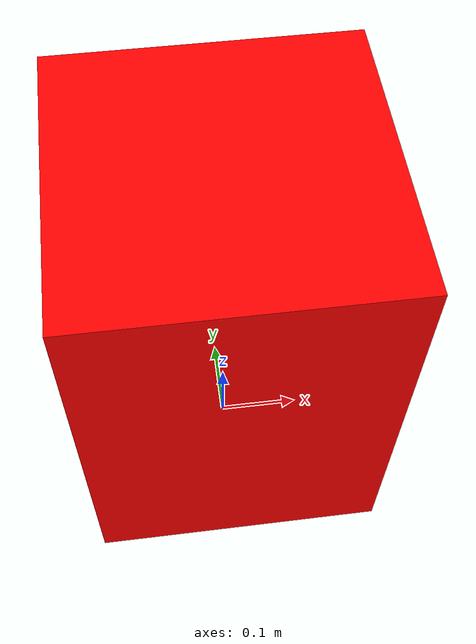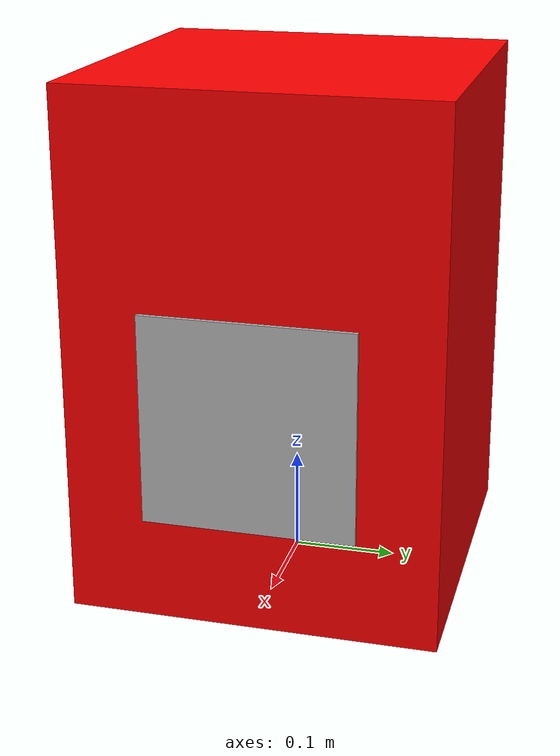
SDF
<?xml version="1.0" ?>
<sdf version="1.6">
  <model name="Charging Dock">
    <static>true</static>
    <link name="docking_station_link">
      <pose>0.0 0.0 0.25 0 0 0</pose>
      <inertial>
        <mass>1.0</mass>
        <inertia> <!-- inertias are tricky to compute -->
          <ixx>0.083</ixx>       <!-- for a box: ixx = 0.083 * mass * (y*y + z*z) -->
          <ixy>0.0</ixy>         <!-- for a box: ixy = 0 -->
          <ixz>0.0</ixz>         <!-- for a box: ixz = 0 -->
          <iyy>0.083</iyy>       <!-- for a box: iyy = 0.083 * mass * (x*x + z*z) -->
          <iyz>0.0</iyz>         <!-- for a box: iyz = 0 -->
          <izz>0.083</izz>       <!-- for a box: izz = 0.083 * mass * (x*x + y*y) -->
        </inertia>
      </inertial>
      <collision name="docking_station_collision">
        <geometry>
          <box>
            <size>0.35 0.35 0.50</size>
          </box>
        </geometry>
      </collision>
      <visual name="docking_station_visual">
        <geometry>
          <box>
            <size>0.35 0.35 0.50</size>
          </box>
        </geometry>
        <material>
          <ambient>0.5 0.0 0.0 1</ambient>  <!-- Red ambient color -->
  <diffuse>1.0 0.0 0.0 1</diffuse>  <!-- Bright red diffuse color -->
  <specular>0.5 0.5 0.5 1</specular>
  <emissive>0.0 0.0 0.0 1</emissive>
        </material>
      </visual>
     </link>
    <link name="artag_link">
      <pose>0.18 0.0 0.1 0 0 0</pose>
      <visual name="visual">
        <geometry>
          <mesh>
            <uri>model://charging_dock/meshes/Marker0.dae</uri>
	    <scale>0.4 0.4 0.4</scale>
          </mesh>
        </geometry>
      </visual>
    </link>
  </model>
</sdf>
